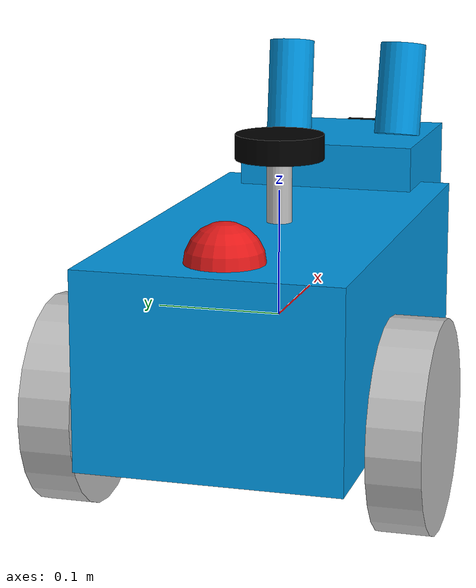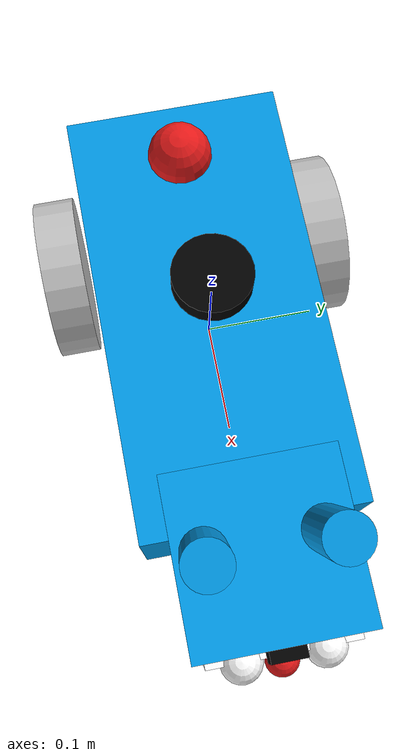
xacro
<?xml version="1.0"?>
<robot name="cat" xmlns:xacro="http://www.ros.org/wiki/xacro">

    <xacro:arg name="robot_name" default="cat"/>

    <xacro:property name="torso_len" value="0.4"/>
    <xacro:property name="torso_width" value="0.2"/>
    <xacro:property name="torso_height" value="0.15"/>
    <xacro:property name="torso_mass" value="5.0"/>

    <xacro:property name="head_size" value="0.15"/>
    <xacro:property name="wheel_radius" value="0.08"/>
    <xacro:property name="wheel_width" value="0.04"/>
    <xacro:property name="wheel_mass" value="1.0"/>
    <xacro:property name="caster_radius" value="0.04"/>

    <material name="dora_blue"><color rgba="0.0 0.6 0.9 1"/></material>
    <material name="dora_white"><color rgba="1 1 1 1"/></material>
    <material name="dora_red"><color rgba="0.9 0.1 0.1 1"/></material>
    <material name="dora_yellow"><color rgba="1 0.8 0.1 1"/></material>
    <material name="black"><color rgba="0 0 0 1"/></material>
    <material name="silver"><color rgba="0.75 0.75 0.75 1"/></material>
    <material name="white"><color rgba="1 1 1 1"/></material>

    <xacro:macro name="box_inertia" params="m x y z">
        <inertial>
            <origin xyz="0 0 0" rpy="0 0 0"/> <mass value="${m}"/>
            <inertia ixx="${m*(y*y+z*z)/12}" ixy="0" ixz="0"
                     iyy="${m*(x*x+z*z)/12}" iyz="0"
                     izz="${m*(x*x+y*y)/12}"/>
        </inertial>
    </xacro:macro>
    <xacro:macro name="cylinder_inertia" params="m r h">
        <inertial>
            <origin xyz="0 0 0" rpy="0 0 0"/> <mass value="${m}"/>
            <inertia ixx="${m*(3*r*r+h*h)/12}" ixy="0" ixz="0"
                     iyy="${m*(3*r*r+h*h)/12}" iyz="0"
                     izz="${m*r*r/2}"/>
        </inertial>
    </xacro:macro>
    <xacro:macro name="sphere_inertia" params="m r">
        <inertial>
            <origin xyz="0 0 0" rpy="0 0 0"/> <mass value="${m}"/>
            <inertia ixx="${2*m*r*r/5}" ixy="0" ixz="0"
                     iyy="${2*m*r*r/5}" iyz="0"
                     izz="${2*m*r*r/5}"/>
        </inertial>
    </xacro:macro>

    <link name="$(arg robot_name)/base_link">
        <visual>
            <geometry><box size="${torso_len} ${torso_width} ${torso_height}"/></geometry>
            <material name="dora_blue"/>
        </visual>
        <collision>
            <geometry><box size="${torso_len} ${torso_width} ${torso_height}"/></geometry>
        </collision>
        <xacro:box_inertia m="${torso_mass}" x="${torso_len}" y="${torso_width}" z="${torso_height}"/>
    </link>
    <gazebo reference="$(arg robot_name)/base_link"><material>Gazebo/SkyBlue</material></gazebo>

    <link name="$(arg robot_name)/pocket">
        <visual>
            <geometry><box size="0.01 0.14 0.10"/></geometry>
            <material name="dora_white"/>
        </visual>
    </link>
    <joint name="$(arg robot_name)/pocket_joint" type="fixed">
        <parent link="$(arg robot_name)/base_link"/>
        <child link="$(arg robot_name)/pocket"/>
        <origin xyz="${torso_len/2 + 0.001} 0 0" rpy="0 0 0"/>
    </joint>
    <gazebo reference="$(arg robot_name)/pocket"><material>Gazebo/White</material></gazebo>

    <link name="$(arg robot_name)/head">
        <visual>
            <geometry><box size="${head_size} ${head_size} ${head_size}"/></geometry>
            <material name="dora_blue"/>
        </visual>
        <collision>
            <geometry><box size="${head_size} ${head_size} ${head_size}"/></geometry>
        </collision>
        <xacro:box_inertia m="1.0" x="${head_size}" y="${head_size}" z="${head_size}"/>
    </link>
    <gazebo reference="$(arg robot_name)/head"><material>Gazebo/SkyBlue</material></gazebo>

    <joint name="$(arg robot_name)/neck_joint" type="fixed">
        <parent link="$(arg robot_name)/base_link"/>
        <child link="$(arg robot_name)/head"/>
        <origin xyz="${torso_len/2 + head_size/2 - 0.05} 0 ${torso_height/2 - head_size/4}" rpy="0 0 0"/>
    </joint>

    <link name="$(arg robot_name)/face_mask">
        <visual>
            <geometry><box size="0.01 0.13 0.11"/></geometry>
            <material name="dora_white"/>
        </visual>
    </link>
    <joint name="$(arg robot_name)/face_mask_joint" type="fixed">
        <parent link="$(arg robot_name)/head"/>
        <child link="$(arg robot_name)/face_mask"/>
        <origin xyz="${head_size/2 + 0.001} 0 -0.01" rpy="0 0 0"/>
    </joint>
    <gazebo reference="$(arg robot_name)/face_mask"><material>Gazebo/White</material></gazebo>

    <link name="$(arg robot_name)/nose">
        <visual>
            <geometry><sphere radius="0.015"/></geometry>
            <material name="dora_red"/>
        </visual>
    </link>
    <joint name="$(arg robot_name)/nose_joint" type="fixed">
        <parent link="$(arg robot_name)/head"/>
        <child link="$(arg robot_name)/nose"/>
        <origin xyz="${head_size/2 + 0.01} 0 0.01" rpy="0 0 0"/>
    </joint>
    <gazebo reference="$(arg robot_name)/nose"><material>Gazebo/Red</material></gazebo>

    <link name="$(arg robot_name)/left_eye">
        <visual>
            <geometry><sphere radius="0.018"/></geometry>
            <material name="dora_white"/>
        </visual>
    </link>
    <joint name="$(arg robot_name)/left_eye_joint" type="fixed">
        <parent link="$(arg robot_name)/head"/>
        <child link="$(arg robot_name)/left_eye"/>
        <origin xyz="${head_size/2 + 0.005} 0.035 0.035" rpy="0 0 0"/>
    </joint>

    <link name="$(arg robot_name)/right_eye">
        <visual>
            <geometry><sphere radius="0.018"/></geometry>
            <material name="dora_white"/>
        </visual>
    </link>
    <joint name="$(arg robot_name)/right_eye_joint" type="fixed">
        <parent link="$(arg robot_name)/head"/>
        <child link="$(arg robot_name)/right_eye"/>
        <origin xyz="${head_size/2 + 0.005} -0.035 0.035" rpy="0 0 0"/>
    </joint>
    <gazebo reference="$(arg robot_name)/left_eye"><material>Gazebo/White</material></gazebo>
    <gazebo reference="$(arg robot_name)/right_eye"><material>Gazebo/White</material></gazebo>

    <link name="$(arg robot_name)/bell">
        <visual>
            <geometry><sphere radius="0.025"/></geometry>
            <material name="dora_yellow"/>
        </visual>
    </link>
    <joint name="$(arg robot_name)/bell_joint" type="fixed">
        <parent link="$(arg robot_name)/base_link"/>
        <child link="$(arg robot_name)/bell"/>
        <origin xyz="${torso_len/2 - 0.02} 0 ${torso_height/2 - 0.02}" rpy="0 0 0"/>
    </joint>
    <gazebo reference="$(arg robot_name)/bell"><material>Gazebo/Gold</material></gazebo>

    <xacro:macro name="cat_ear" params="prefix y_pos">
        <link name="$(arg robot_name)/${prefix}_ear">
            <visual>
                <geometry><cylinder radius="0.02" length="0.08"/></geometry>
                <material name="dora_blue"/>
            </visual>
        </link>
        <joint name="$(arg robot_name)/${prefix}_ear_joint" type="fixed">
            <parent link="$(arg robot_name)/head"/>
            <child link="$(arg robot_name)/${prefix}_ear"/>
            <origin xyz="0 ${y_pos} ${head_size/2 + 0.04}" rpy="0 0.2 ${y_pos*2}"/>
        </joint>
        <gazebo reference="$(arg robot_name)/${prefix}_ear"><material>Gazebo/SkyBlue</material></gazebo>
    </xacro:macro>
    <xacro:cat_ear prefix="left" y_pos="0.05"/>
    <xacro:cat_ear prefix="right" y_pos="-0.05"/>

    <link name="$(arg robot_name)/tail">
        <visual>
            <origin xyz="0.05 0 0" rpy="0 0 0"/>
            <geometry><sphere radius="0.03"/></geometry>
            <material name="dora_red"/>
        </visual>
        <xacro:sphere_inertia m="0.1" r="0.03"/>
    </link>
    <joint name="$(arg robot_name)/tail_joint" type="fixed">
        <parent link="$(arg robot_name)/base_link"/>
        <child link="$(arg robot_name)/tail"/>
        <origin xyz="-${torso_len/2} 0 ${torso_height/2}" rpy="0 0 0"/>
    </joint>
    <gazebo reference="$(arg robot_name)/tail"><material>Gazebo/Red</material></gazebo>

    <xacro:macro name="wheel" params="prefix y_pos">
        <link name="$(arg robot_name)/${prefix}_wheel">
            <visual>
                <origin xyz="0 0 0" rpy="1.5707 0 0"/>
                <geometry><cylinder radius="${wheel_radius}" length="${wheel_width}"/></geometry>
                <material name="silver"/>
            </visual>
            <collision>
                <origin xyz="0 0 0" rpy="1.5707 0 0"/>
                <geometry><cylinder radius="${wheel_radius}" length="${wheel_width}"/></geometry>
            </collision>
            <xacro:cylinder_inertia m="${wheel_mass}" r="${wheel_radius}" h="${wheel_width}"/>
        </link>

        <joint name="$(arg robot_name)/${prefix}_wheel_joint" type="continuous">
            <parent link="$(arg robot_name)/base_link"/>
            <child link="$(arg robot_name)/${prefix}_wheel"/>
            <origin xyz="-0.1 ${y_pos} -0.05" rpy="0 0 0"/>
            <axis xyz="0 1 0"/>
        </joint>
        <gazebo reference="$(arg robot_name)/${prefix}_wheel"><material>Gazebo/Grey</material></gazebo>
    </xacro:macro>

    <xacro:wheel prefix="left" y_pos="0.13"/>
    <xacro:wheel prefix="right" y_pos="-0.13"/>

    <link name="$(arg robot_name)/caster_leg">
        <visual>
            <geometry><cylinder radius="0.02" length="0.05"/></geometry>
            <material name="silver"/>
        </visual>
        <inertial>
            <origin xyz="0 0 0" rpy="0 0 0"/>
            <mass value="0.1"/> <inertia ixx="0.0001" ixy="0" ixz="0" iyy="0.0001" iyz="0" izz="0.0001"/>
        </inertial>
    </link>
    <joint name="$(arg robot_name)/caster_leg_joint" type="fixed">
        <parent link="$(arg robot_name)/base_link"/>
        <child link="$(arg robot_name)/caster_leg"/>
        <origin xyz="0.25 0 -0.05" rpy="0 0 0"/>
    </joint>
    <gazebo reference="$(arg robot_name)/caster_leg"><material>Gazebo/Grey</material></gazebo>

    <link name="$(arg robot_name)/front_caster">
        <visual>
            <geometry><sphere radius="${caster_radius}"/></geometry>
            <material name="white"/>
        </visual>
        <collision>
            <geometry><sphere radius="${caster_radius}"/></geometry>
        </collision>
        <xacro:sphere_inertia m="0.2" r="${caster_radius}"/>
    </link>

    <joint name="$(arg robot_name)/caster_joint" type="fixed">
        <parent link="$(arg robot_name)/caster_leg"/>
        <child link="$(arg robot_name)/front_caster"/>
        <origin xyz="0 0 -0.04" rpy="0 0 0"/>
    </joint>
    <gazebo reference="$(arg robot_name)/front_caster">
        <mu1>0.001</mu1> <mu2>0.001</mu2> <kp>1000000.0</kp>
        <kd>1.0</kd>
    </gazebo>

    <link name="$(arg robot_name)/lidar_stand">
        <visual>
            <geometry><cylinder radius="0.01" length="0.05"/></geometry>
            <material name="silver"/>
        </visual>
        <collision>
            <geometry><cylinder radius="0.01" length="0.05"/></geometry>
        </collision>
        <xacro:cylinder_inertia m="0.05" r="0.01" h="0.05"/>
    </link>

    <joint name="$(arg robot_name)/lidar_stand_joint" type="fixed">
        <parent link="$(arg robot_name)/base_link"/>
        <child link="$(arg robot_name)/lidar_stand"/>
        <origin xyz="0 0 0.10" rpy="0 0 0"/>
    </joint>

    <link name="$(arg robot_name)/lidar_link">
        <visual>
            <geometry><cylinder radius="0.035" length="0.02"/></geometry>
            <material name="black"/>
        </visual>
        <collision>
            <geometry><cylinder radius="0.035" length="0.02"/></geometry>
        </collision>
        <xacro:cylinder_inertia m="0.1" r="0.035" h="0.02"/>
    </link>

    <joint name="$(arg robot_name)/lidar_joint" type="fixed">
        <parent link="$(arg robot_name)/lidar_stand"/>
        <child link="$(arg robot_name)/lidar_link"/>
        <origin xyz="0 0 0.035" rpy="0 0 0"/>
    </joint>

    <gazebo reference="$(arg robot_name)/lidar_link">
        <sensor name="lidar" type="gpu_lidar">
            <frame_id>lidar_link</frame_id>
            <pose>0 0 0 0 0 0</pose>
            <always_on>true</always_on>
            <visualize>true</visualize>
            <update_rate>40</update_rate>
            <topic>/model/$(arg robot_name)/scan</topic>
            <ray>
                <scan>
                    <horizontal>
                        <samples>720</samples>
                        <resolution>1</resolution>
                        <min_angle>-3.14</min_angle>
                        <max_angle>3.14</max_angle>
                    </horizontal>
                </scan>
                <range>
                    <min>0.3</min> <max>12.0</max>
                </range>
            </ray>
        </sensor>
        <material>Gazebo/Black</material>
    </gazebo>

    <link name="$(arg robot_name)/camera_link">
        <visual>
            <geometry><box size="0.01 0.03 0.03"/></geometry>
            <material name="black"/>
        </visual>
        <collision>
            <geometry><box size="0.01 0.03 0.03"/></geometry>
        </collision>
        <xacro:box_inertia m="0.05" x="0.01" y="0.03" z="0.03"/>
    </link>

    <joint name="$(arg robot_name)/camera_joint" type="fixed">
        <parent link="$(arg robot_name)/head"/>
        <child link="$(arg robot_name)/camera_link"/>
        <origin xyz="${head_size/2 + 0.005} 0 0.06" rpy="0 0 0"/>
    </joint>

    <gazebo reference="$(arg robot_name)/camera_link">
        <sensor name="camera" type="camera">
            <camera>
                <horizontal_fov>1.047</horizontal_fov>
                <image>
                    <width>640</width>
                    <height>480</height>
                </image>
                <clip>
                    <near>0.1</near>
                    <far>100</far>
                </clip>
            </camera>
            <always_on>1</always_on>
            <update_rate>30</update_rate>
            <visualize>true</visualize>
            <topic>/model/$(arg robot_name)/camera/image_raw</topic>
        </sensor>
    </gazebo>

    <link name="$(arg robot_name)/imu_link">
        <visual><geometry><box size="0.01 0.01 0.01"/></geometry></visual>
        <xacro:box_inertia m="0.01" x="0.01" y="0.01" z="0.01"/>
    </link>

    <joint name="$(arg robot_name)/imu_joint" type="fixed">
        <parent link="$(arg robot_name)/base_link"/>
        <child link="$(arg robot_name)/imu_link"/>
        <origin xyz="0 0 0" rpy="0 0 0"/>
    </joint>

    <gazebo reference="$(arg robot_name)/imu_link">
        <sensor name="imu" type="imu">
            <always_on>true</always_on>
            <update_rate>100</update_rate>
            <topic>/model/$(arg robot_name)/imu</topic>
        </sensor>
    </gazebo>

    <gazebo>
        <plugin filename="gz-sim-joint-state-publisher-system" name="gz::sim::systems::JointStatePublisher">
            <topic>/model/$(arg robot_name)/joint_states</topic>
        </plugin>

        <plugin
            filename="gz-sim-diff-drive-system"
            name="gz::sim::systems::DiffDrive">
            <left_joint>$(arg robot_name)/left_wheel_joint</left_joint>
            <right_joint>$(arg robot_name)/right_wheel_joint</right_joint>
            <wheel_separation>0.26</wheel_separation>
            <wheel_radius>${wheel_radius}</wheel_radius>

            <topic>/model/$(arg robot_name)/cmd_vel</topic>

            <odom_topic>/model/$(arg robot_name)/odom_noisy_ignore</odom_topic>
            <tf_topic>/model/$(arg robot_name)/tf_noisy_ignore</tf_topic>

            <frame_id>$(arg robot_name)/odom</frame_id>
            <child_frame_id>$(arg robot_name)/base_link</child_frame_id>
        </plugin>

        <plugin
            filename="gz-sim-odometry-publisher-system"
            name="gz::sim::systems::OdometryPublisher">
            <dimensions>3</dimensions> <topic>/model/$(arg robot_name)/odometry</topic>
            <tf_topic>/model/$(arg robot_name)/tf</tf_topic>

            <odom_frame>$(arg robot_name)map</odom_frame>
            <robot_base_frame>$(arg robot_name)/base_link</robot_base_frame>
            <odom_publish_frequency>50</odom_publish_frequency>
        </plugin>
    </gazebo>

</robot>
